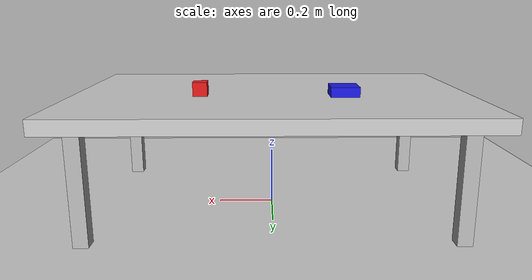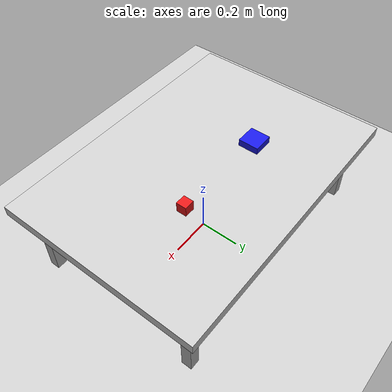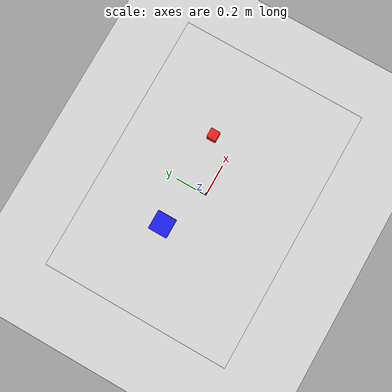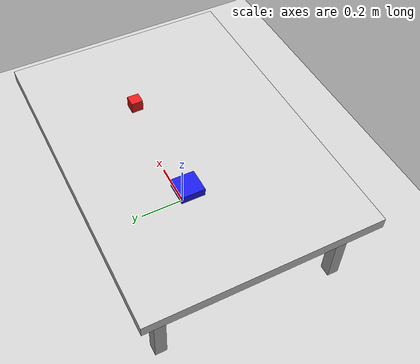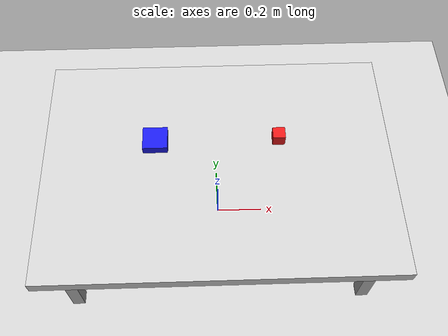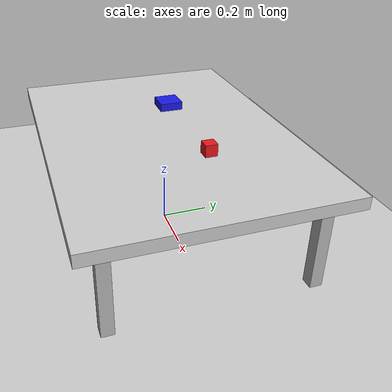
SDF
<?xml version="1.0"?>
<sdf version="1.7">
  <world name="nexus_world">

    <include>
      <uri>model://ground_plane</uri>
    </include>

    <include>
      <uri>model://sun</uri>
    </include>

    <!-- Physics -->
    <physics type="ode" name="default_physics">
      <real_time_update_rate>1000</real_time_update_rate>
      <max_step_size>0.001</max_step_size>
      <real_time_factor>1.0</real_time_factor>
      <gravity>0 0 -9.81</gravity>
    </physics>

    <!-- Table where the robot sits -->
    <model name="table">
      <static>true</static>
      <pose>0 0 0 0 0 0</pose>
      <link name="table_top">
        <pose>0 0 0.4 0 0 0</pose>
        <visual name="v">
          <geometry><box><size>1.4 1.0 0.05</size></box></geometry>
          <material><ambient>0.8 0.8 0.8 1</ambient></material>
        </visual>
        <collision name="c">
          <geometry><box><size>1.4 1.0 0.05</size></box></geometry>
        </collision>
      </link>
      <link name="leg1">
        <pose>0.6 0.4 0.2 0 0 0</pose>
        <visual name="v"><geometry><box><size>0.05 0.05 0.4</size></box></geometry></visual>
        <collision name="c"><geometry><box><size>0.05 0.05 0.4</size></box></geometry></collision>
      </link>
      <link name="leg2">
        <pose>-0.6 0.4 0.2 0 0 0</pose>
        <visual name="v"><geometry><box><size>0.05 0.05 0.4</size></box></geometry></visual>
        <collision name="c"><geometry><box><size>0.05 0.05 0.4</size></box></geometry></collision>
      </link>
      <link name="leg3">
        <pose>0.6 -0.4 0.2 0 0 0</pose>
        <visual name="v"><geometry><box><size>0.05 0.05 0.4</size></box></geometry></visual>
        <collision name="c"><geometry><box><size>0.05 0.05 0.4</size></box></geometry></collision>
      </link>
      <link name="leg4">
        <pose>-0.6 -0.4 0.2 0 0 0</pose>
        <visual name="v"><geometry><box><size>0.05 0.05 0.4</size></box></geometry></visual>
        <collision name="c"><geometry><box><size>0.05 0.05 0.4</size></box></geometry></collision>
      </link>
    </model>

    <!-- Red cube to be grasped -->
    <model name="red_cube">
      <pose>0.25 0.1 0.45 0 0 0</pose>
      <link name="link">
        <visual name="v">
          <geometry><box><size>0.05 0.05 0.05</size></box></geometry>
          <material><ambient>0.9 0.1 0.1 1</ambient><diffuse>0.9 0.1 0.1 1</diffuse></material>
        </visual>
        <collision name="c"><geometry><box><size>0.05 0.05 0.05</size></box></geometry></collision>
        <inertial>
          <mass>0.05</mass>
          <inertia><ixx>0.00001</ixx><ixy>0</ixy><ixz>0</ixz>
                   <iyy>0.00001</iyy><iyz>0</iyz><izz>0.00001</izz></inertia>
        </inertial>
      </link>
    </model>

    <!-- Blue box (target placement) -->
    <model name="blue_box">
      <pose>-0.25 0.1 0.43 0 0 0</pose>
      <link name="link">
        <visual name="v">
          <geometry><box><size>0.1 0.1 0.06</size></box></geometry>
          <material><ambient>0.1 0.1 0.9 1</ambient><diffuse>0.1 0.1 0.9 1</diffuse></material>
        </visual>
        <collision name="c"><geometry><box><size>0.1 0.1 0.06</size></box></geometry></collision>
        <inertial>
          <mass>0.1</mass>
          <inertia><ixx>0.00002</ixx><ixy>0</ixy><ixz>0</ixz>
                   <iyy>0.00002</iyy><iyz>0</iyz><izz>0.00002</izz></inertia>
        </inertial>
      </link>
    </model>

  </world>
</sdf>
